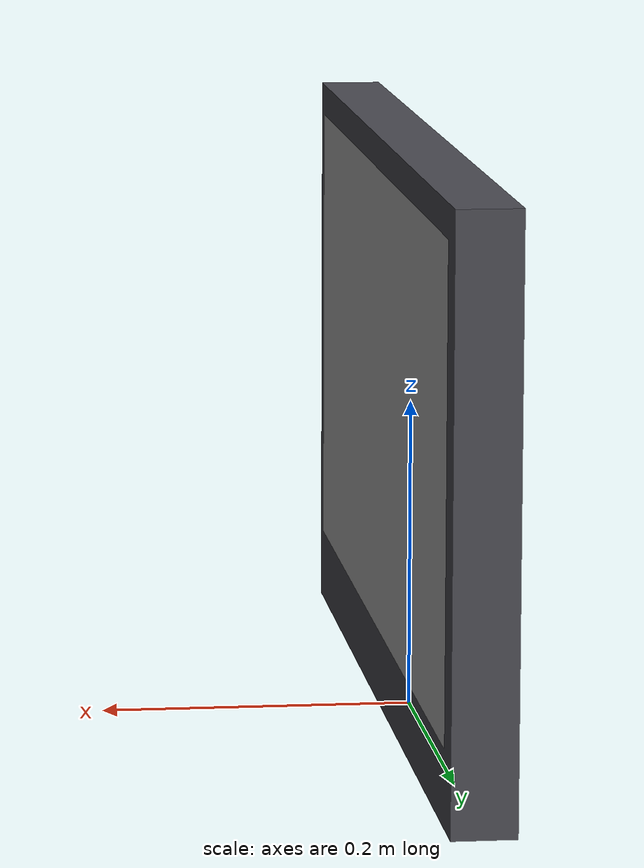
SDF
<?xml version="1.0"?>
<sdf version="1.8">
  <model name="board_practice_d7">
    <static>true</static>
    <link name="link">
      <collision name="body_collision">
        <pose>0 0 0.185 0 0 0</pose>
        <geometry><box><size>0.04 0.64 0.37</size></box></geometry>
      </collision>
      <visual name="body">
        <pose>0 0 0.185 0 0 0</pose>
        <geometry><box><size>0.04 0.64 0.37</size></box></geometry>
        <material>
          <ambient>0.30 0.30 0.33 1</ambient>
          <diffuse>0.30 0.30 0.33 1</diffuse>
        </material>
      </visual>
      <visual name="face">
        <geometry><mesh><uri>model://board_practice_d7/meshes/board_practice_d7.obj</uri></mesh></geometry>
      </visual>
    </link>
  </model>
</sdf>
